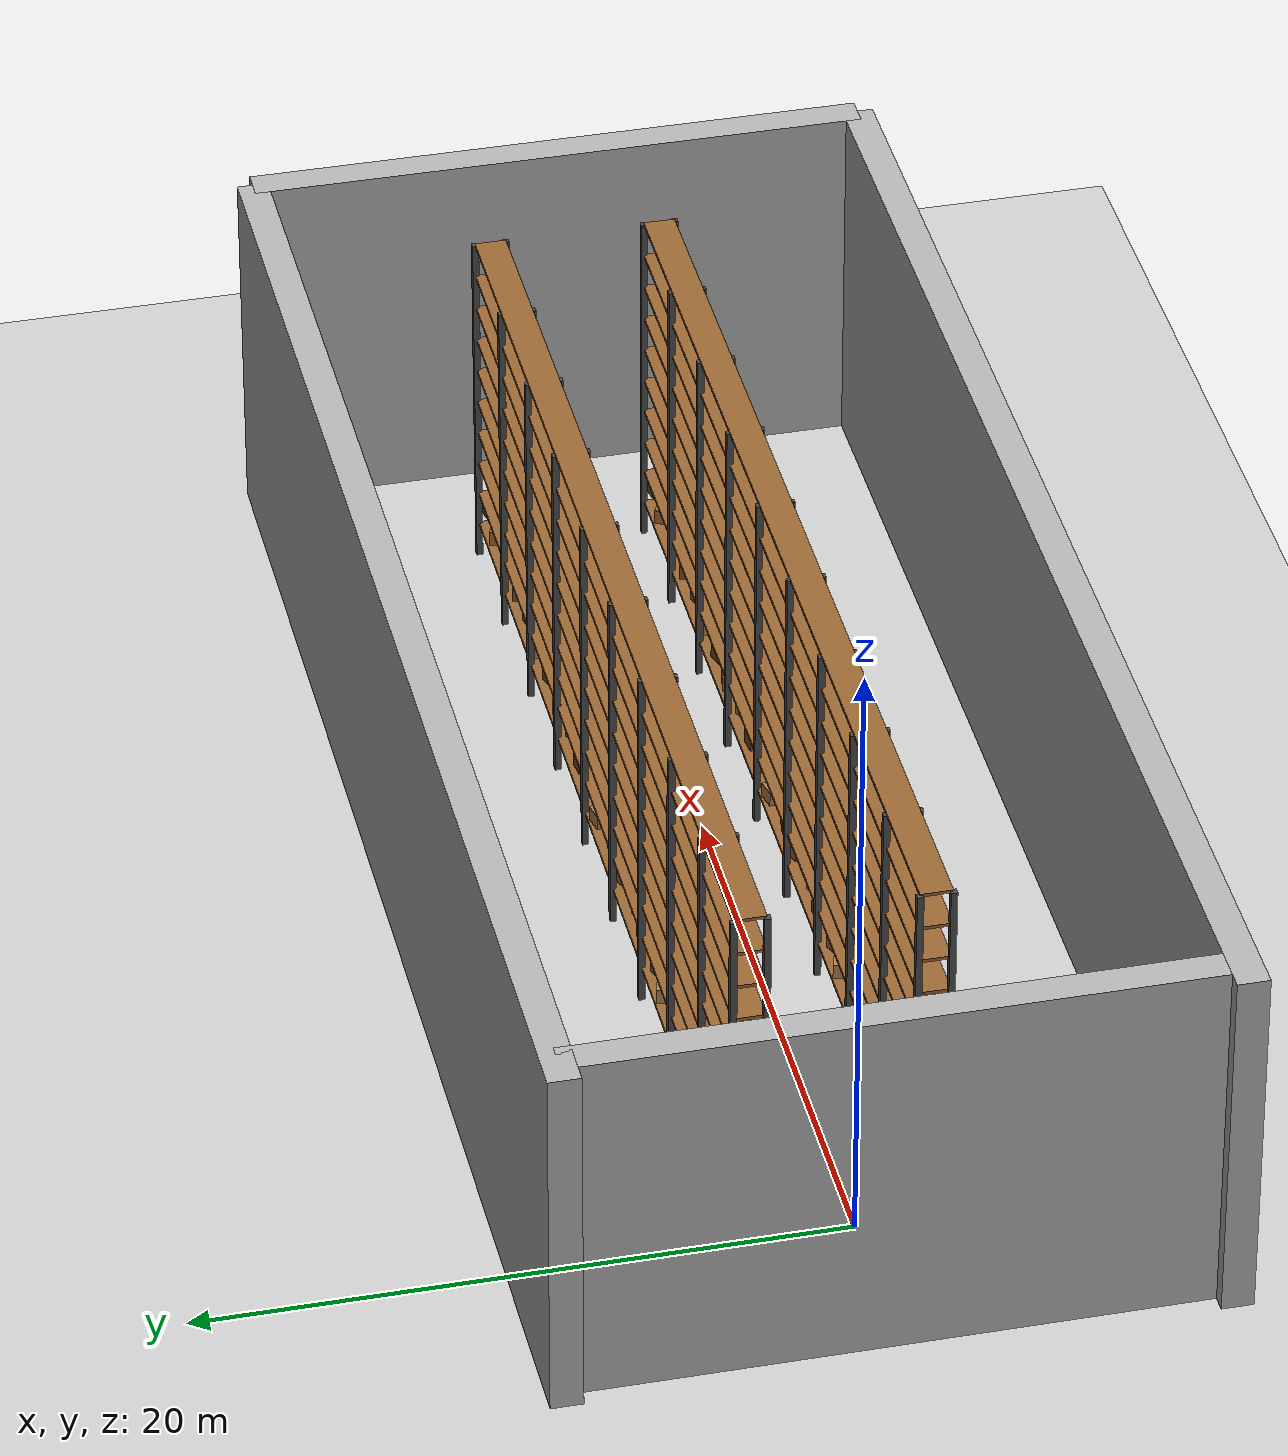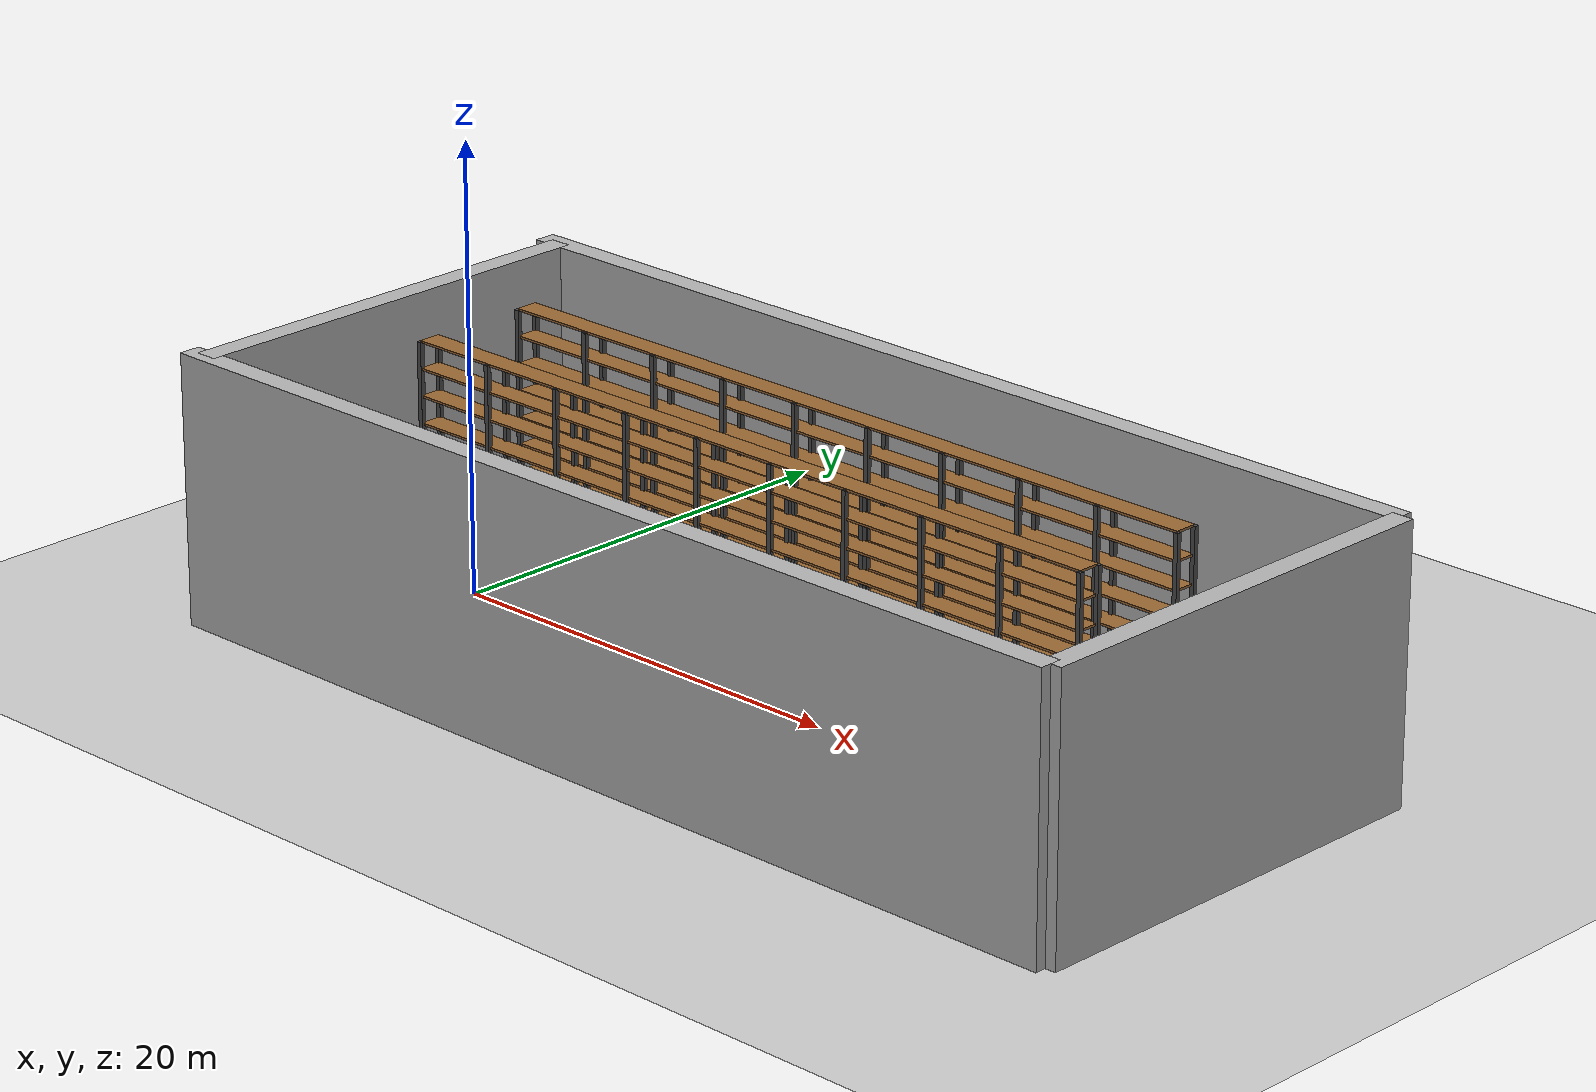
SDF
<?xml version="1.0" encoding="UTF-8"?>
<sdf version="1.9">
  <world name="map">
    <physics type="ode">
      <max_step_size>0.001</max_step_size>
      <real_time_factor>1.0</real_time_factor>
      <real_time_update_rate>1000</real_time_update_rate>
    </physics>

    <plugin filename="gz-sim-physics-system"
      name="gz::sim::systems::Physics">
    </plugin>
    <plugin
      filename="gz-sim-sensors-system"
      name="gz::sim::systems::Sensors">
      <render_engine>ogre2</render_engine>
    </plugin>
    <plugin filename="gz-sim-user-commands-system"
      name="gz::sim::systems::UserCommands">
    </plugin>
    <plugin filename="gz-sim-scene-broadcaster-system"
      name="gz::sim::systems::SceneBroadcaster">
    </plugin>
    <plugin filename="gz-sim-air-pressure-system"
      name="gz::sim::systems::AirPressure">
    </plugin>
    <plugin filename="gz-sim-air-speed-system"
      name="gz::sim::systems::AirSpeed">
    </plugin>
    <plugin filename="gz-sim-altimeter-system"
      name="gz::sim::systems::Altimeter">
    </plugin>
    <plugin filename="gz-sim-imu-system"
      name="gz::sim::systems::Imu">
    </plugin>
    <plugin filename="gz-sim-magnetometer-system"
      name="gz::sim::systems::Magnetometer">
    </plugin>
    <plugin filename="gz-sim-navsat-system"
      name="gz::sim::systems::NavSat">
    </plugin>

    <gravity>0 0 -9.8</gravity>
    <magnetic_field>6e-06 2.3e-05 -4.2e-05</magnetic_field>
    <atmosphere type="adiabatic"/>

    <scene>
      <grid>false</grid>
      <ambient>0.4 0.4 0.4 1</ambient>
      <background>0.7 0.7 0.7 1</background>
      <shadows>true</shadows>
    </scene>

    <model name="ground_plane">
      <static>true</static>
      <link name="link">
        <collision name="collision">
          <geometry>
            <plane>
              <normal>0 0 1</normal>
              <size>1 1</size>
            </plane>
          </geometry>
          <surface>
            <friction>
              <ode/>
            </friction>
            <bounce/>
            <contact/>
          </surface>
        </collision>
        <visual name="visual">
          <geometry>
            <plane>
              <normal>0 0 1</normal>
              <size>500 500</size>
            </plane>
          </geometry>
          <material>
            <ambient>0.8 0.8 0.8 1</ambient>
            <diffuse>0.8 0.8 0.8 1</diffuse>
            <specular>0.8 0.8 0.8 1</specular>
          </material>
        </visual>
        <pose>0 0 0 0 -0 0</pose>
        <inertial>
          <pose>0 0 0 0 -0 0</pose>
          <mass>1</mass>
          <inertia>
            <ixx>1</ixx>
            <ixy>0</ixy>
            <ixz>0</ixz>
            <iyy>1</iyy>
            <iyz>0</iyz>
            <izz>1</izz>
          </inertia>
        </inertial>
        <enable_wind>false</enable_wind>
      </link>
      <pose>0 0 0 0 -0 0</pose>
      <self_collide>false</self_collide>
    </model>

    <light name="sunUTC" type="directional">
      <pose>0 0 500 0 -0 0</pose>
      <cast_shadows>true</cast_shadows>
      <intensity>1</intensity>
      <direction>0.001 0.625 -0.78</direction>
      <diffuse>0.904 0.904 0.904 1</diffuse>
      <specular>0.271 0.271 0.271 1</specular>
      <attenuation>
        <range>2000</range>
        <linear>0</linear>
        <constant>1</constant>
        <quadratic>0</quadratic>
      </attenuation>
      <spot>
        <inner_angle>0</inner_angle>
        <outer_angle>0</outer_angle>
        <falloff>0</falloff>
      </spot>
    </light>

    <spherical_coordinates>
      <surface_model>EARTH_WGS84</surface_model>
      <world_frame_orientation>ENU</world_frame_orientation>
      <latitude_deg>47.397971057728974</latitude_deg>
      <longitude_deg> 8.546163739800146</longitude_deg>
      <elevation>0</elevation>
    </spherical_coordinates>

    <!-- Warehouse walls -->
    <model name="warehouse_walls">
      <static>true</static>

      <!-- Front wall -->
      <link name="front_wall">
        <pose>17.5 -10 6 0 0 0</pose>
        <collision name="collision">
          <geometry>
            <box>
              <size>47 1 12</size>
            </box>
          </geometry>
        </collision>
        <visual name="visual">
          <geometry>
            <box>
              <size>47 1 12</size>
            </box>
          </geometry>
          <material>
            <ambient>0.7 0.7 0.7 1</ambient>
            <diffuse>0.7 0.7 0.7 1</diffuse>
          </material>
        </visual>
      </link>

      <!-- Back wall -->
      <link name="back_wall">
        <pose>17.5 10 6 0 0 0</pose>
        <collision name="collision">
          <geometry>
            <box>
              <size>47 1 12</size>
            </box>
          </geometry>
        </collision>
        <visual name="visual">
          <geometry>
            <box>
              <size>47 1 12</size>
            </box>
          </geometry>
          <material>
            <ambient>0.7 0.7 0.7 1</ambient>
            <diffuse>0.7 0.7 0.7 1</diffuse>
          </material>
        </visual>
      </link>

      <!-- Left wall -->
      <link name="left_wall">
        <pose>-5 0 6 0 0 0</pose>
        <collision name="collision">
          <geometry>
            <box>
              <size>1 20 12</size>
            </box>
          </geometry>
        </collision>
        <visual name="visual">
          <geometry>
            <box>
              <size>1 20 12</size>
            </box>
          </geometry>
          <material>
            <ambient>0.7 0.7 0.7 1</ambient>
            <diffuse>0.7 0.7 0.7 1</diffuse>
          </material>
        </visual>
      </link>

      <!-- Right wall -->
      <link name="right_wall">
        <pose>41 0 6 0 0 0</pose>
        <collision name="collision">
          <geometry>
            <box>
              <size>1 20 12</size>
            </box>
          </geometry>
        </collision>
        <visual name="visual">
          <geometry>
            <box>
              <size>1 20 12</size>
            </box>
          </geometry>
          <material>
            <ambient>0.7 0.7 0.7 1</ambient>
            <diffuse>0.7 0.7 0.7 1</diffuse>
          </material>
        </visual>
      </link>
    </model>

    <!-- Warehouse Rackings -->
    <include>
      <uri>model://warehouse_rack</uri>
      <pose>0 -2.75 0 0 0 0</pose>
      <name>rack_1</name>
    </include>

    <include>
      <uri>model://warehouse_rack</uri>
      <pose>0 2.75 0 0 0 0</pose>
      <name>rack_2</name>
    </include>

    <!-- Include arucotag model -->

    <gui fullscreen="0">
      <camera name="user_camera">
        <pose>-20 -20 15 0 0.3 0.78</pose>
        <view_controller>orbit</view_controller>
      </camera>
    </gui>

  </world>
</sdf>

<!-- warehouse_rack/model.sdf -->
<sdf version="1.9">
  <model name="warehouse_rack">
    <static>true</static>

    <!-- Rack Posts -->
    <link name="post_1">
      <pose>0 0 6 0 0 0</pose>
      <collision name="collision">
        <geometry>
          <box>
            <size>0.2 0.2 12</size>
          </box>
        </geometry>
      </collision>
      <visual name="visual">
        <geometry>
          <box>
            <size>0.2 0.2 12</size>
          </box>
        </geometry>
        <material>
          <ambient>0.3 0.3 0.3 1</ambient>
          <diffuse>0.3 0.3 0.3 1</diffuse>
        </material>
      </visual>
    </link>

    <link name="post_2">
      <pose>4 0 6 0 0 0</pose>
      <collision name="collision">
        <geometry>
          <box>
            <size>0.2 0.2 12</size>
          </box>
        </geometry>
      </collision>
      <visual name="visual">
        <geometry>
          <box>
            <size>0.2 0.2 12</size>
          </box>
        </geometry>
        <material>
          <ambient>0.3 0.3 0.3 1</ambient>
          <diffuse>0.3 0.3 0.3 1</diffuse>
        </material>
      </visual>
    </link>

    <link name="post_3">
      <pose>8 0 6 0 0 0</pose>
      <collision name="collision">
        <geometry>
          <box>
            <size>0.2 0.2 12</size>
          </box>
        </geometry>
      </collision>
      <visual name="visual">
        <geometry>
          <box>
            <size>0.2 0.2 12</size>
          </box>
        </geometry>
        <material>
          <ambient>0.3 0.3 0.3 1</ambient>
          <diffuse>0.3 0.3 0.3 1</diffuse>
        </material>
      </visual>
    </link>

    <link name="post_4">
      <pose>12 0 6 0 0 0</pose>
      <collision name="collision">
        <geometry>
          <box>
            <size>0.2 0.2 12</size>
          </box>
        </geometry>
      </collision>
      <visual name="visual">
        <geometry>
          <box>
            <size>0.2 0.2 12</size>
          </box>
        </geometry>
        <material>
          <ambient>0.3 0.3 0.3 1</ambient>
          <diffuse>0.3 0.3 0.3 1</diffuse>
        </material>
      </visual>
    </link>

    <link name="post_5">
      <pose>16 0 6 0 0 0</pose>
      <collision name="collision">
        <geometry>
          <box>
            <size>0.2 0.2 12</size>
          </box>
        </geometry>
      </collision>
      <visual name="visual">
        <geometry>
          <box>
            <size>0.2 0.2 12</size>
          </box>
        </geometry>
        <material>
          <ambient>0.3 0.3 0.3 1</ambient>
          <diffuse>0.3 0.3 0.3 1</diffuse>
        </material>
      </visual>
    </link>

    <link name="post_6">
      <pose>20 0 6 0 0 0</pose>
      <collision name="collision">
        <geometry>
          <box>
            <size>0.2 0.2 12</size>
          </box>
        </geometry>
      </collision>
      <visual name="visual">
        <geometry>
          <box>
            <size>0.2 0.2 12</size>
          </box>
        </geometry>
        <material>
          <ambient>0.3 0.3 0.3 1</ambient>
          <diffuse>0.3 0.3 0.3 1</diffuse>
        </material>
      </visual>
    </link>

    <link name="post_7">
      <pose>24 0 6 0 0 0</pose>
      <collision name="collision">
        <geometry>
          <box>
            <size>0.2 0.2 12</size>
          </box>
        </geometry>
      </collision>
      <visual name="visual">
        <geometry>
          <box>
            <size>0.2 0.2 12</size>
          </box>
        </geometry>
        <material>
          <ambient>0.3 0.3 0.3 1</ambient>
          <diffuse>0.3 0.3 0.3 1</diffuse>
        </material>
      </visual>
    </link>

    <link name="post_8">
      <pose>28 0 6 0 0 0</pose>
      <collision name="collision">
        <geometry>
          <box>
            <size>0.2 0.2 12</size>
          </box>
        </geometry>
      </collision>
      <visual name="visual">
        <geometry>
          <box>
            <size>0.2 0.2 12</size>
          </box>
        </geometry>
        <material>
          <ambient>0.3 0.3 0.3 1</ambient>
          <diffuse>0.3 0.3 0.3 1</diffuse>
        </material>
      </visual>
    </link>

    <link name="post_9">
      <pose>32 0 6 0 0 0</pose>
      <collision name="collision">
        <geometry>
          <box>
            <size>0.2 0.2 12</size>
          </box>
        </geometry>
      </collision>
      <visual name="visual">
        <geometry>
          <box>
            <size>0.2 0.2 12</size>
          </box>
        </geometry>
        <material>
          <ambient>0.3 0.3 0.3 1</ambient>
          <diffuse>0.3 0.3 0.3 1</diffuse>
        </material>
      </visual>
    </link>

    <link name="post_10">
      <pose>36 0 6 0 0 0</pose>
      <collision name="collision">
        <geometry>
          <box>
            <size>0.2 0.2 12</size>
          </box>
        </geometry>
      </collision>
      <visual name="visual">
        <geometry>
          <box>
            <size>0.2 0.2 12</size>
          </box>
        </geometry>
        <material>
          <ambient>0.3 0.3 0.3 1</ambient>
          <diffuse>0.3 0.3 0.3 1</diffuse>
        </material>
      </visual>
    </link>

    <!-- Posts on the other side -->
    <link name="post_11">
      <pose>0 1 6 0 0 0</pose>
      <collision name="collision">
        <geometry>
          <box>
            <size>0.2 0.2 12</size>
          </box>
        </geometry>
      </collision>
      <visual name="visual">
        <geometry>
          <box>
            <size>0.2 0.2 12</size>
          </box>
        </geometry>
        <material>
          <ambient>0.3 0.3 0.3 1</ambient>
          <diffuse>0.3 0.3 0.3 1</diffuse>
        </material>
      </visual>
    </link>

    <link name="post_12">
      <pose>4 1 6 0 0 0</pose>
      <collision name="collision">
        <geometry>
          <box>
            <size>0.2 0.2 12</size>
          </box>
        </geometry>
      </collision>
      <visual name="visual">
        <geometry>
          <box>
            <size>0.2 0.2 12</size>
          </box>
        </geometry>
        <material>
          <ambient>0.3 0.3 0.3 1</ambient>
          <diffuse>0.3 0.3 0.3 1</diffuse>
        </material>
      </visual>
    </link>

    <link name="post_13">
      <pose>8 1 6 0 0 0</pose>
      <collision name="collision">
        <geometry>
          <box>
            <size>0.2 0.2 12</size>
          </box>
        </geometry>
      </collision>
      <visual name="visual">
        <geometry>
          <box>
            <size>0.2 0.2 12</size>
          </box>
        </geometry>
        <material>
          <ambient>0.3 0.3 0.3 1</ambient>
          <diffuse>0.3 0.3 0.3 1</diffuse>
        </material>
      </visual>
    </link>

    <link name="post_14">
      <pose>12 1 6 0 0 0</pose>
      <collision name="collision">
        <geometry>
          <box>
            <size>0.2 0.2 12</size>
          </box>
        </geometry>
      </collision>
      <visual name="visual">
        <geometry>
          <box>
            <size>0.2 0.2 12</size>
          </box>
        </geometry>
        <material>
          <ambient>0.3 0.3 0.3 1</ambient>
          <diffuse>0.3 0.3 0.3 1</diffuse>
        </material>
      </visual>
    </link>

    <link name="post_15">
      <pose>16 1 6 0 0 0</pose>
      <collision name="collision">
        <geometry>
          <box>
            <size>0.2 0.2 12</size>
          </box>
        </geometry>
      </collision>
      <visual name="visual">
        <geometry>
          <box>
            <size>0.2 0.2 12</size>
          </box>
        </geometry>
        <material>
          <ambient>0.3 0.3 0.3 1</ambient>
          <diffuse>0.3 0.3 0.3 1</diffuse>
        </material>
      </visual>
    </link>

    <link name="post_16">
      <pose>20 1 6 0 0 0</pose>
      <collision name="collision">
        <geometry>
          <box>
            <size>0.2 0.2 12</size>
          </box>
        </geometry>
      </collision>
      <visual name="visual">
        <geometry>
          <box>
            <size>0.2 0.2 12</size>
          </box>
        </geometry>
        <material>
          <ambient>0.3 0.3 0.3 1</ambient>
          <diffuse>0.3 0.3 0.3 1</diffuse>
        </material>
      </visual>
    </link>

    <link name="post_17">
      <pose>24 1 6 0 0 0</pose>
      <collision name="collision">
        <geometry>
          <box>
            <size>0.2 0.2 12</size>
          </box>
        </geometry>
      </collision>
      <visual name="visual">
        <geometry>
          <box>
            <size>0.2 0.2 12</size>
          </box>
        </geometry>
        <material>
          <ambient>0.3 0.3 0.3 1</ambient>
          <diffuse>0.3 0.3 0.3 1</diffuse>
        </material>
      </visual>
    </link>

    <link name="post_18">
      <pose>28 1 6 0 0 0</pose>
      <collision name="collision">
        <geometry>
          <box>
            <size>0.2 0.2 12</size>
          </box>
        </geometry>
      </collision>
      <visual name="visual">
        <geometry>
          <box>
            <size>0.2 0.2 12</size>
          </box>
        </geometry>
        <material>
          <ambient>0.3 0.3 0.3 1</ambient>
          <diffuse>0.3 0.3 0.3 1</diffuse>
        </material>
      </visual>
    </link>

    <link name="post_19">
      <pose>32 1 6 0 0 0</pose>
      <collision name="collision">
        <geometry>
          <box>
            <size>0.2 0.2 12</size>
          </box>
        </geometry>
      </collision>
      <visual name="visual">
        <geometry>
          <box>
            <size>0.2 0.2 12</size>
          </box>
        </geometry>
        <material>
          <ambient>0.3 0.3 0.3 1</ambient>
          <diffuse>0.3 0.3 0.3 1</diffuse>
        </material>
      </visual>
    </link>

    <link name="post_20">
      <pose>36 1 6 0 0 0</pose>
      <collision name="collision">
        <geometry>
          <box>
            <size>0.2 0.2 12</size>
          </box>
        </geometry>
      </collision>
      <visual name="visual">
        <geometry>
          <box>
            <size>0.2 0.2 12</size>
          </box>
        </geometry>
        <material>
          <ambient>0.3 0.3 0.3 1</ambient>
          <diffuse>0.3 0.3 0.3 1</diffuse>
        </material>
      </visual>
    </link>

    <!-- Rack shelves -->
    <link name="shelf_1">
      <pose>18 0.5 1.2 0 0 0</pose>
      <collision name="collision">
        <geometry>
          <box>
            <size>36 1 0.1</size>
          </box>
        </geometry>
      </collision>
      <visual name="visual">
        <geometry>
          <box>
            <size>36 1 0.1</size>
          </box>
        </geometry>
        <material>
          <ambient>0.6 0.4 0.2 1</ambient>
          <diffuse>0.6 0.4 0.2 1</diffuse>
        </material>
      </visual>
    </link>

    <!-- Boxes on shelf 1 -->
    <link name="box_1_1">
      <pose>1.5 0.4 1.5 0 0 0.3</pose>
      <collision name="collision">
        <geometry>
          <box>
            <size>0.6 0.6 0.5</size>
          </box>
        </geometry>
      </collision>
      <visual name="visual">
        <geometry>
          <box>
            <size>0.6 0.6 0.5</size>
          </box>
        </geometry>
        <material>
          <ambient>0.7 0.5 0.3 1</ambient>
          <diffuse>0.7 0.5 0.3 1</diffuse>
        </material>
      </visual>
    </link>

    <link name="box_1_2">
      <pose>2.8 0.6 1.5 0 0 -0.2</pose>
      <collision name="collision">
        <geometry>
          <box>
            <size>0.6 0.6 0.5</size>
          </box>
        </geometry>
      </collision>
      <visual name="visual">
        <geometry>
          <box>
            <size>0.6 0.6 0.5</size>
          </box>
        </geometry>
        <material>
          <ambient>0.6 0.4 0.2 1</ambient>
          <diffuse>0.6 0.4 0.2 1</diffuse>
        </material>
      </visual>
    </link>

    <link name="box_1_3">
      <pose>4.2 0.5 1.5 0 0 0.1</pose>
      <collision name="collision">
        <geometry>
          <box>
            <size>0.6 0.6 0.5</size>
          </box>
        </geometry>
      </collision>
      <visual name="visual">
        <geometry>
          <box>
            <size>0.6 0.6 0.5</size>
          </box>
        </geometry>
        <material>
          <ambient>0.5 0.3 0.1 1</ambient>
          <diffuse>0.5 0.3 0.1 1</diffuse>
        </material>
      </visual>
    </link>

    <link name="box_1_4">
      <pose>5.8 0.35 1.5 0 0 0.5</pose>
      <collision name="collision">
        <geometry>
          <box>
            <size>0.6 0.6 0.5</size>
          </box>
        </geometry>
      </collision>
      <visual name="visual">
        <geometry>
          <box>
            <size>0.6 0.6 0.5</size>
          </box>
        </geometry>
        <material>
          <ambient>0.7 0.5 0.3 1</ambient>
          <diffuse>0.7 0.5 0.3 1</diffuse>
        </material>
      </visual>
    </link>

    <link name="box_1_5">
      <pose>7.1 0.55 1.5 0 0 -0.4</pose>
      <collision name="collision">
        <geometry>
          <box>
            <size>0.6 0.6 0.5</size>
          </box>
        </geometry>
      </collision>
      <visual name="visual">
        <geometry>
          <box>
            <size>0.6 0.6 0.5</size>
          </box>
        </geometry>
        <material>
          <ambient>0.6 0.4 0.2 1</ambient>
          <diffuse>0.6 0.4 0.2 1</diffuse>
        </material>
      </visual>
    </link>

    <link name="box_1_6">
      <pose>8.6 0.45 1.5 0 0 0.15</pose>
      <collision name="collision">
        <geometry>
          <box>
            <size>0.6 0.6 0.5</size>
          </box>
        </geometry>
      </collision>
      <visual name="visual">
        <geometry>
          <box>
            <size>0.6 0.6 0.5</size>
          </box>
        </geometry>
        <material>
          <ambient>0.5 0.3 0.1 1</ambient>
          <diffuse>0.5 0.3 0.1 1</diffuse>
        </material>
      </visual>
    </link>

    <link name="box_1_7">
      <pose>10.3 0.6 1.5 0 0 -0.3</pose>
      <collision name="collision">
        <geometry>
          <box>
            <size>0.6 0.6 0.5</size>
          </box>
        </geometry>
      </collision>
      <visual name="visual">
        <geometry>
          <box>
            <size>0.6 0.6 0.5</size>
          </box>
        </geometry>
        <material>
          <ambient>0.7 0.5 0.3 1</ambient>
          <diffuse>0.7 0.5 0.3 1</diffuse>
        </material>
      </visual>
    </link>

    <link name="box_1_8">
      <pose>11.5 0.4 1.5 0 0 0.4</pose>
      <collision name="collision">
        <geometry>
          <box>
            <size>0.6 0.6 0.5</size>
          </box>
        </geometry>
      </collision>
      <visual name="visual">
        <geometry>
          <box>
            <size>0.6 0.6 0.5</size>
          </box>
        </geometry>
        <material>
          <ambient>0.6 0.4 0.2 1</ambient>
          <diffuse>0.6 0.4 0.2 1</diffuse>
        </material>
      </visual>
    </link>

    <link name="box_1_9">
      <pose>13.2 0.5 1.5 0 0 0.05</pose>
      <collision name="collision">
        <geometry>
          <box>
            <size>0.6 0.6 0.5</size>
          </box>
        </geometry>
      </collision>
      <visual name="visual">
        <geometry>
          <box>
            <size>0.6 0.6 0.5</size>
          </box>
        </geometry>
        <material>
          <ambient>0.5 0.3 0.1 1</ambient>
          <diffuse>0.5 0.3 0.1 1</diffuse>
        </material>
      </visual>
    </link>

    <link name="box_1_10">
      <pose>14.8 0.35 1.5 0 0 -0.25</pose>
      <collision name="collision">
        <geometry>
          <box>
            <size>0.6 0.6 0.5</size>
          </box>
        </geometry>
      </collision>
      <visual name="visual">
        <geometry>
          <box>
            <size>0.6 0.6 0.5</size>
          </box>
        </geometry>
        <material>
          <ambient>0.7 0.5 0.3 1</ambient>
          <diffuse>0.7 0.5 0.3 1</diffuse>
        </material>
      </visual>
    </link>

    <link name="box_1_11">
      <pose>16.4 0.55 1.5 0 0 0.35</pose>
      <collision name="collision">
        <geometry>
          <box>
            <size>0.6 0.6 0.5</size>
          </box>
        </geometry>
      </collision>
      <visual name="visual">
        <geometry>
          <box>
            <size>0.6 0.6 0.5</size>
          </box>
        </geometry>
        <material>
          <ambient>0.6 0.4 0.2 1</ambient>
          <diffuse>0.6 0.4 0.2 1</diffuse>
        </material>
      </visual>
    </link>

    <link name="box_1_12">
      <pose>17.7 0.45 1.5 0 0 -0.15</pose>
      <collision name="collision">
        <geometry>
          <box>
            <size>0.6 0.6 0.5</size>
          </box>
        </geometry>
      </collision>
      <visual name="visual">
        <geometry>
          <box>
            <size>0.6 0.6 0.5</size>
          </box>
        </geometry>
        <material>
          <ambient>0.5 0.3 0.1 1</ambient>
          <diffuse>0.5 0.3 0.1 1</diffuse>
        </material>
      </visual>
    </link>

    <link name="box_1_13">
      <pose>19.3 0.6 1.5 0 0 0.2</pose>
      <collision name="collision">
        <geometry>
          <box>
            <size>0.6 0.6 0.5</size>
          </box>
        </geometry>
      </collision>
      <visual name="visual">
        <geometry>
          <box>
            <size>0.6 0.6 0.5</size>
          </box>
        </geometry>
        <material>
          <ambient>0.7 0.5 0.3 1</ambient>
          <diffuse>0.7 0.5 0.3 1</diffuse>
        </material>
      </visual>
    </link>

    <link name="box_1_14">
      <pose>20.9 0.4 1.5 0 0 -0.35</pose>
      <collision name="collision">
        <geometry>
          <box>
            <size>0.6 0.6 0.5</size>
          </box>
        </geometry>
      </collision>
      <visual name="visual">
        <geometry>
          <box>
            <size>0.6 0.6 0.5</size>
          </box>
        </geometry>
        <material>
          <ambient>0.6 0.4 0.2 1</ambient>
          <diffuse>0.6 0.4 0.2 1</diffuse>
        </material>
      </visual>
    </link>

    <link name="box_1_15">
      <pose>22.2 0.5 1.5 0 0 0.1</pose>
      <collision name="collision">
        <geometry>
          <box>
            <size>0.6 0.6 0.5</size>
          </box>
        </geometry>
      </collision>
      <visual name="visual">
        <geometry>
          <box>
            <size>0.6 0.6 0.5</size>
          </box>
        </geometry>
        <material>
          <ambient>0.5 0.3 0.1 1</ambient>
          <diffuse>0.5 0.3 0.1 1</diffuse>
        </material>
      </visual>
    </link>

    <link name="box_1_16">
      <pose>23.8 0.35 1.5 0 0 0.45</pose>
      <collision name="collision">
        <geometry>
          <box>
            <size>0.6 0.6 0.5</size>
          </box>
        </geometry>
      </collision>
      <visual name="visual">
        <geometry>
          <box>
            <size>0.6 0.6 0.5</size>
          </box>
        </geometry>
        <material>
          <ambient>0.7 0.5 0.3 1</ambient>
          <diffuse>0.7 0.5 0.3 1</diffuse>
        </material>
      </visual>
    </link>

    <link name="box_1_17">
      <pose>25.4 0.55 1.5 0 0 -0.2</pose>
      <collision name="collision">
        <geometry>
          <box>
            <size>0.6 0.6 0.5</size>
          </box>
        </geometry>
      </collision>
      <visual name="visual">
        <geometry>
          <box>
            <size>0.6 0.6 0.5</size>
          </box>
        </geometry>
        <material>
          <ambient>0.6 0.4 0.2 1</ambient>
          <diffuse>0.6 0.4 0.2 1</diffuse>
        </material>
      </visual>
    </link>

    <link name="box_1_18">
      <pose>26.9 0.45 1.5 0 0 0.3</pose>
      <collision name="collision">
        <geometry>
          <box>
            <size>0.6 0.6 0.5</size>
          </box>
        </geometry>
      </collision>
      <visual name="visual">
        <geometry>
          <box>
            <size>0.6 0.6 0.5</size>
          </box>
        </geometry>
        <material>
          <ambient>0.5 0.3 0.1 1</ambient>
          <diffuse>0.5 0.3 0.1 1</diffuse>
        </material>
      </visual>
    </link>

    <link name="box_1_19">
      <pose>28.5 0.6 1.5 0 0 -0.1</pose>
      <collision name="collision">
        <geometry>
          <box>
            <size>0.6 0.6 0.5</size>
          </box>
        </geometry>
      </collision>
      <visual name="visual">
        <geometry>
          <box>
            <size>0.6 0.6 0.5</size>
          </box>
        </geometry>
        <material>
          <ambient>0.7 0.5 0.3 1</ambient>
          <diffuse>0.7 0.5 0.3 1</diffuse>
        </material>
      </visual>
    </link>

    <link name="box_1_20">
      <pose>30.1 0.4 1.5 0 0 0.25</pose>
      <collision name="collision">
        <geometry>
          <box>
            <size>0.6 0.6 0.5</size>
          </box>
        </geometry>
      </collision>
      <visual name="visual">
        <geometry>
          <box>
            <size>0.6 0.6 0.5</size>
          </box>
        </geometry>
        <material>
          <ambient>0.6 0.4 0.2 1</ambient>
          <diffuse>0.6 0.4 0.2 1</diffuse>
        </material>
      </visual>
    </link>

    <link name="box_1_21">
      <pose>31.6 0.5 1.5 0 0 -0.3</pose>
      <collision name="collision">
        <geometry>
          <box>
            <size>0.6 0.6 0.5</size>
          </box>
        </geometry>
      </collision>
      <visual name="visual">
        <geometry>
          <box>
            <size>0.6 0.6 0.5</size>
          </box>
        </geometry>
        <material>
          <ambient>0.5 0.3 0.1 1</ambient>
          <diffuse>0.5 0.3 0.1 1</diffuse>
        </material>
      </visual>
    </link>

    <link name="box_1_22">
      <pose>33.2 0.35 1.5 0 0 0.15</pose>
      <collision name="collision">
        <geometry>
          <box>
            <size>0.6 0.6 0.5</size>
          </box>
        </geometry>
      </collision>
      <visual name="visual">
        <geometry>
          <box>
            <size>0.6 0.6 0.5</size>
          </box>
        </geometry>
        <material>
          <ambient>0.7 0.5 0.3 1</ambient>
          <diffuse>0.7 0.5 0.3 1</diffuse>
        </material>
      </visual>
    </link>

    <link name="box_1_23">
      <pose>34.8 0.55 1.5 0 0 -0.4</pose>
      <collision name="collision">
        <geometry>
          <box>
            <size>0.6 0.6 0.5</size>
          </box>
        </geometry>
      </collision>
      <visual name="visual">
        <geometry>
          <box>
            <size>0.6 0.6 0.5</size>
          </box>
        </geometry>
        <material>
          <ambient>0.6 0.4 0.2 1</ambient>
          <diffuse>0.6 0.4 0.2 1</diffuse>
        </material>
      </visual>
    </link>

    <link name="box_1_24">
      <pose>36.3 0.45 1.5 0 0 0.2</pose>
      <collision name="collision">
        <geometry>
          <box>
            <size>0.6 0.6 0.5</size>
          </box>
        </geometry>
      </collision>
      <visual name="visual">
        <geometry>
          <box>
            <size>0.6 0.6 0.5</size>
          </box>
        </geometry>
        <material>
          <ambient>0.5 0.3 0.1 1</ambient>
          <diffuse>0.5 0.3 0.1 1</diffuse>
        </material>
      </visual>
    </link>

    <link name="shelf_2">
      <pose>18 0.5 2.4 0 0 0</pose>
      <collision name="collision">
        <geometry>
          <box>
            <size>36 1 0.1</size>
          </box>
        </geometry>
      </collision>
      <visual name="visual">
        <geometry>
          <box>
            <size>36 1 0.1</size>
          </box>
        </geometry>
        <material>
          <ambient>0.6 0.4 0.2 1</ambient>
          <diffuse>0.6 0.4 0.2 1</diffuse>
        </material>
      </visual>
    </link>

    <link name="shelf_3">
      <pose>18 0.5 3.6 0 0 0</pose>
      <collision name="collision">
        <geometry>
          <box>
            <size>36 1 0.1</size>
          </box>
        </geometry>
      </collision>
      <visual name="visual">
        <geometry>
          <box>
            <size>36 1 0.1</size>
          </box>
        </geometry>
        <material>
          <ambient>0.6 0.4 0.2 1</ambient>
          <diffuse>0.6 0.4 0.2 1</diffuse>
        </material>
      </visual>
    </link>

    <link name="shelf_4">
      <pose>18 0.5 4.8 0 0 0</pose>
      <collision name="collision">
        <geometry>
          <box>
            <size>36 1 0.1</size>
          </box>
        </geometry>
      </collision>
      <visual name="visual">
        <geometry>
          <box>
            <size>36 1 0.1</size>
          </box>
        </geometry>
        <material>
          <ambient>0.6 0.4 0.2 1</ambient>
          <diffuse>0.6 0.4 0.2 1</diffuse>
        </material>
      </visual>
    </link>

    <link name="shelf_5">
      <pose>18 0.5 6 0 0 0</pose>
      <collision name="collision">
        <geometry>
          <box>
            <size>36 1 0.1</size>
          </box>
        </geometry>
      </collision>
      <visual name="visual">
        <geometry>
          <box>
            <size>36 1 0.1</size>
          </box>
        </geometry>
        <material>
          <ambient>0.6 0.4 0.2 1</ambient>
          <diffuse>0.6 0.4 0.2 1</diffuse>
        </material>
      </visual>
    </link>

    <link name="shelf_6">
      <pose>18 0.5 7.2 0 0 0</pose>
      <collision name="collision">
        <geometry>
          <box>
            <size>36 1 0.1</size>
          </box>
        </geometry>
      </collision>
      <visual name="visual">
        <geometry>
          <box>
            <size>36 1 0.1</size>
          </box>
        </geometry>
        <material>
          <ambient>0.6 0.4 0.2 1</ambient>
          <diffuse>0.6 0.4 0.2 1</diffuse>
        </material>
      </visual>
    </link>

    <link name="shelf_7">
      <pose>18 0.5 8.4 0 0 0</pose>
      <collision name="collision">
        <geometry>
          <box>
            <size>36 1 0.1</size>
          </box>
        </geometry>
      </collision>
      <visual name="visual">
        <geometry>
          <box>
            <size>36 1 0.1</size>
          </box>
        </geometry>
        <material>
          <ambient>0.6 0.4 0.2 1</ambient>
          <diffuse>0.6 0.4 0.2 1</diffuse>
        </material>
      </visual>
    </link>

    <link name="shelf_8">
      <pose>18 0.5 9.6 0 0 0</pose>
      <collision name="collision">
        <geometry>
          <box>
            <size>36 1 0.1</size>
          </box>
        </geometry>
      </collision>
      <visual name="visual">
        <geometry>
          <box>
            <size>36 1 0.1</size>
          </box>
        </geometry>
        <material>
          <ambient>0.6 0.4 0.2 1</ambient>
          <diffuse>0.6 0.4 0.2 1</diffuse>
        </material>
      </visual>
    </link>

    <link name="shelf_9">
      <pose>18 0.5 10.8 0 0 0</pose>
      <collision name="collision">
        <geometry>
          <box>
            <size>36 1 0.1</size>
          </box>
        </geometry>
      </collision>
      <visual name="visual">
        <geometry>
          <box>
            <size>36 1 0.1</size>
          </box>
        </geometry>
        <material>
          <ambient>0.6 0.4 0.2 1</ambient>
          <diffuse>0.6 0.4 0.2 1</diffuse>
        </material>
      </visual>
    </link>

    <link name="shelf_10">
      <pose>18 0.5 12 0 0 0</pose>
      <collision name="collision">
        <geometry>
          <box>
            <size>36 1 0.1</size>
          </box>
        </geometry>
      </collision>
      <visual name="visual">
        <geometry>
          <box>
            <size>36 1 0.1</size>
          </box>
        </geometry>
        <material>
          <ambient>0.6 0.4 0.2 1</ambient>
          <diffuse>0.6 0.4 0.2 1</diffuse>
        </material>
      </visual>
    </link>

  </model>
</sdf>
